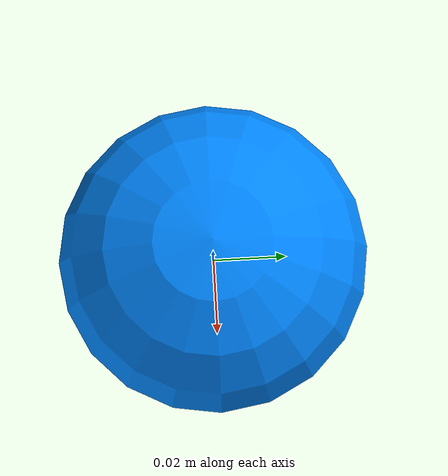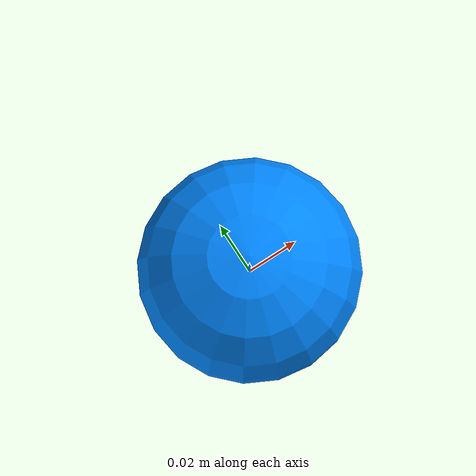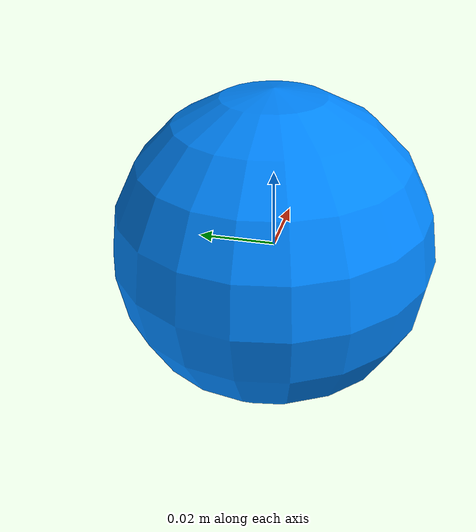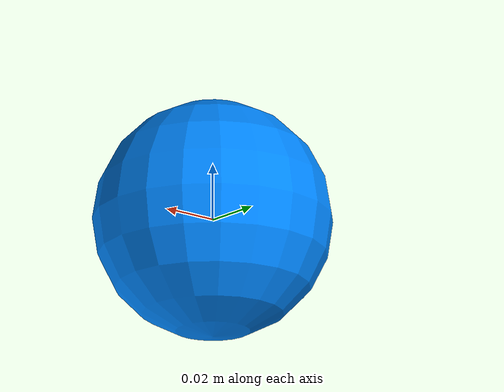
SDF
<?xml version="1.0" ?>
<sdf version="1.6">
  <model name="blue-sphere">

    <!--general object params -->
    <static>false</static>

    <link name="link">

      <!--pose of link relative to model-->
      <pose>0 0 0 0 0 0</pose>

        <velocity_decay>
            <linear>0.5</linear>
        </velocity_decay>

      <visual name="visual">
          <geometry>
              <sphere>
                  <radius>0.041</radius> <!--should be in cm-->
              </sphere>
          </geometry>
          <material>
              <ambient>0, 0.529, 1 1.0</ambient>
              <diffuse>0, 0.529, 1 1.0</diffuse>
              <specular>0.1 0.1 0.1 1.0</specular>
              <emissive>0 0 0 1</emissive>
          </material>
      </visual>

      <collision name="collision">
          <geometry>
              <sphere>
                  <radius>0.041</radius> <!--should be in cm-->
              </sphere>
          </geometry>
          <surface>
            <friction>
                <ode>
                    <mu>0.2</mu>
                    <mu2>0.2</mu2>
                </ode>
                </friction>
            </surface>
      </collision>

      <inertial>
        <mass>0.04</mass> <!--units are in kg. 1g = 0.001kg-->
        <inertia>
          <ixx>0.0002</ixx>
          <iyy>0.0002</iyy>
          <izz>0.0002</izz>
        </inertia>
      </inertial>

    </link>

    <plugin filename="gz-sim-pose-publisher-system" name="gz::sim::systems::PosePublisher">
      <publish_link_pose>false</publish_link_pose>
      <publish_visual_pose>false</publish_visual_pose>
      <publish_collision_pose>false</publish_collision_pose>
      <publish_sensor_pose>false</publish_sensor_pose>
      <publish_model_pose>true</publish_model_pose>
      <publish_nested_model_pose>true</publish_nested_model_pose>
      <use_pose_vector_msg>false</use_pose_vector_msg>
      <update_frequency>20</update_frequency> <!-- Publish at 20 Hz -->
      <static_publisher>false</static_publisher>
      <static_update_frequency>1</static_update_frequency>
    </plugin>

    <plugin filename="rollingFriction" name="rolling_friction::RollingFrictionPlugin">
      <link_name>link</link_name>
      <coefficient>0.01</coefficient>
    </plugin>

  </model>
</sdf>
